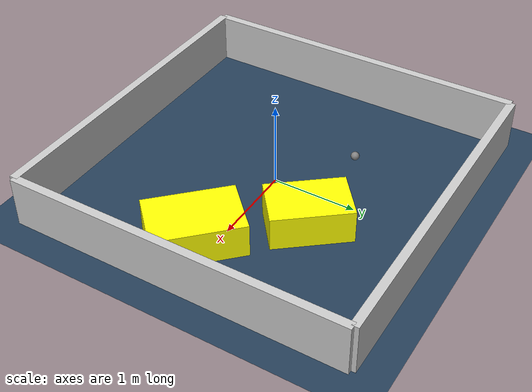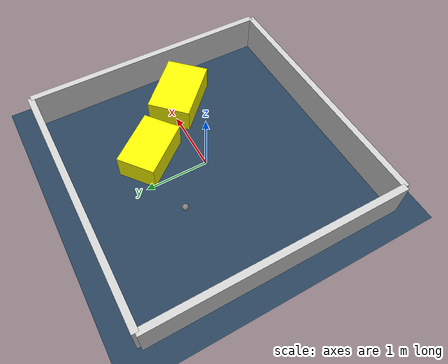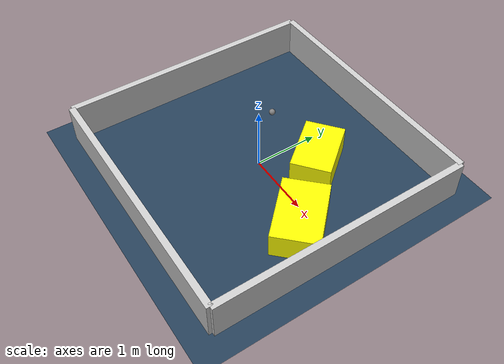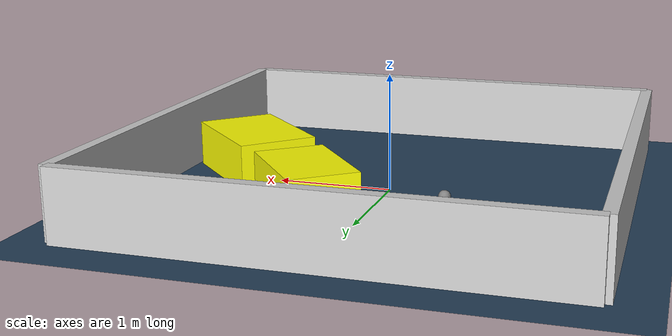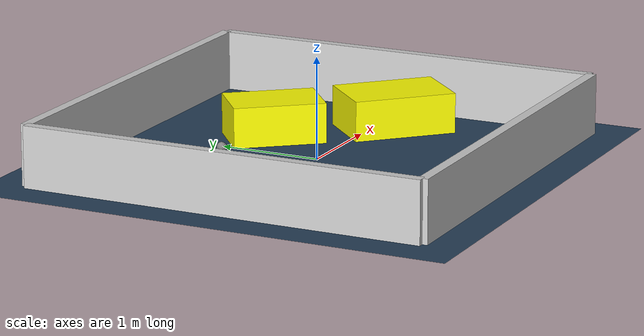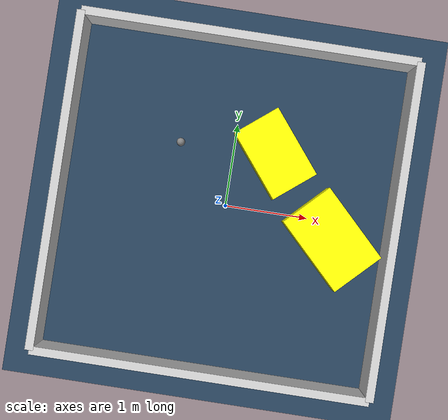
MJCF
<?xml version="1.0" ?>
<mujoco model="generated_environment">
  <option timestep="0.01" integrator="RK4" cone="elliptic"/>
  <default>
    <geom density="1"/>
  </default>
  <asset>
    <texture builtin="gradient" height="3072" rgb1="0.3 0.5 0.7" rgb2="0 0 0" type="skybox" width="512"/>
    <texture builtin="checker" height="300" mark="edge" markrgb="0.8 0.8 0.8" name="groundplane" rgb1="0.2 0.3 0.4" rgb2="0.1 0.2 0.3" type="2d" width="300"/>
    <material name="groundplane" reflectance="0.2" texrepeat="5 5" texture="groundplane" texuniform="true"/>
    <material name="robot" rgba="0.0 1.0 0.0 1"/>
  </asset>
  <worldbody>
    <light dir="0 0 -1" directional="true" pos="0 0 1.5"/>
    <geom condim="4" friction="1.0 0.005 0.001" material="groundplane" name="floor" size="0 0 0.05" type="plane"/>
    <body name="walls">
      <geom name="wall_1" condim="4" pos="-2.0 0.0 0.3" rgba="0.800000011920929 0.800000011920929 0.800000011920929 1.0" size="0.05 2.0 0.3" type="box"/>
      <geom name="wall_2" condim="4" pos="2.0 0.0 0.3" rgba="0.800000011920929 0.800000011920929 0.800000011920929 1.0" size="0.05 2.0 0.3" type="box"/>
      <geom name="wall_3" condim="4" pos="0.0 -2.0 0.3" rgba="0.800000011920929 0.800000011920929 0.800000011920929 1.0" size="2.0 0.05 0.3" type="box"/>
      <geom name="wall_4" condim="4" pos="0.0 2.0 0.3" rgba="0.800000011920929 0.800000011920929 0.800000011920929 1.0" size="2.0 0.05 0.3" type="box"/>
    </body>
    <body name="robot">
      <joint name="joint_x" type="slide" pos="0 0 0" axis="1 0 0"/>
      <joint name="joint_y" type="slide" pos="0 0 0" axis="0 1 0"/>
      <geom name="robot" type="sphere" pos="-0.643197494636023 0.6798079038111893 0.2" size="0.05" mass="5." friction="1.0 0.005 0.0001" condim="4"/>
      <site name="sensor_ball"/>
    </body>
    <body name="obstacle_1_movable">
      <geom name="obstacle_1_movable" condim="4" pos="1.3099384244851109 -0.20125083461508098 0.2" euler="0 0 314.91744958302615" friction="1.0 0.005 0.001" rgba="1 1 0 1" size="0.5153651786187727 0.34219793708260043 0.2" type="box" mass="0.1"/>
      <joint type="free"/>
    </body>
    <body name="obstacle_2_movable">
      <geom name="obstacle_2_movable" condim="4" pos="0.49391097246716265 0.7038077925369075 0.2" euler="0 0 308.71810517203687" friction="1.0 0.005 0.001" rgba="1 1 0 1" size="0.4563413087753412 0.2996893852675476 0.2" type="box" mass="0.1"/>
      <joint type="free"/>
    </body>
  </worldbody>
  <actuator>
    <motor name="actuator_x" joint="joint_x" gear="1" ctrlrange="-1 1"/>
    <motor name="actuator_y" joint="joint_y" gear="1" ctrlrange="-1 1"/>
  </actuator>
</mujoco>
